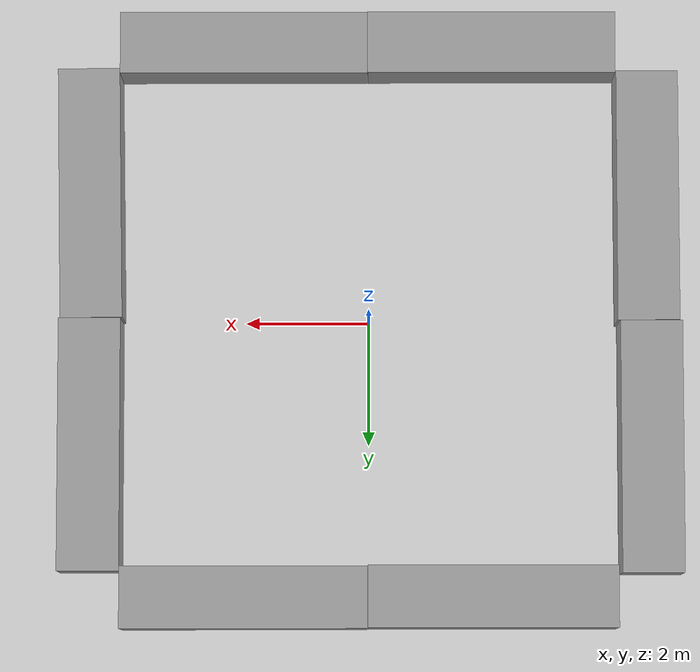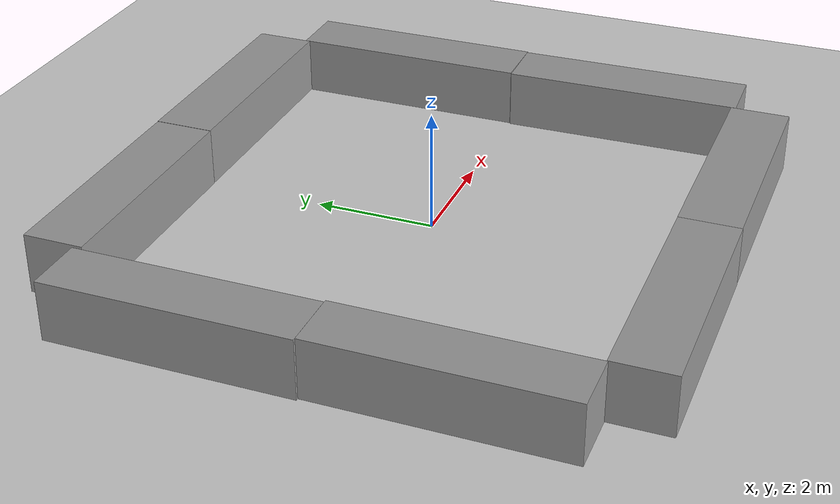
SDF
<sdf version="1.7">
 <world name="default">
  <light name="sun" type="directional">
   <cast_shadows>0</cast_shadows>
   <pose>0 0 10 0 -0 0</pose>
   <diffuse>0.8 0.8 0.8 1</diffuse>
   <specular>0.2 0.2 0.2 1</specular>
   <attenuation>
    <range>1000</range>
    <constant>0.9</constant>
    <linear>0.01</linear>
    <quadratic>0.001</quadratic>
   </attenuation>
   <direction>-0.5 0.1 -0.9</direction>
   <spot><inner_angle>0</inner_angle><outer_angle>0</outer_angle><falloff>0</falloff></spot>
  </light>
  <model name="ground_plane">
   <static>1</static>
   <link name="link">
    <collision name="collision">
     <geometry><plane><normal>0 0 1</normal><size>100 100</size></plane></geometry>
     <surface><friction><ode><mu>100</mu><mu2>50</mu2></ode></friction></surface>
    </collision>
    <visual name="visual">
     <cast_shadows>0</cast_shadows>
     <geometry><plane><normal>0 0 1</normal><size>100 100</size></plane></geometry>
     <material>
      <script><uri>file://media/materials/scripts/gazebo.material</uri><name>Gazebo/Grey</name></script>
     </material>
    </visual>
   </link>
  </model>
  <gravity>0 0 -9.8</gravity>
  <scene><ambient>0.4 0.4 0.4 1</ambient><background>0.7 0.7 0.7 1</background><shadows>1</shadows></scene>
  <magnetic_field>6e-06 2.3e-05 -4.2e-05</magnetic_field>
  <atmosphere type="adiabatic"/>
  <physics type="ode">
   <max_step_size>0.001</max_step_size>
   <real_time_factor>1</real_time_factor>
   <real_time_update_rate>1000</real_time_update_rate>
  </physics>
  <audio><device>default</device></audio>
  <spherical_coordinates>
   <surface_model>EARTH_WGS84</surface_model>
   <latitude_deg>0</latitude_deg>
   <longitude_deg>0</longitude_deg>
   <elevation>0</elevation>
   <heading_deg>0</heading_deg>
  </spherical_coordinates>
  <model name="unit_box">
   <pose>4.50419 -2.03086 0.5 0 -0 0.01501</pose>
   <link name="link">
    <inertial>
     <mass>1</mass>
     <inertia>
      <ixx>0.166667</ixx>
      <ixy>0</ixy>
      <ixz>0</ixz>
      <iyy>0.166667</iyy>
      <iyz>0</iyz>
      <izz>0.166667</izz>
     </inertia>
    </inertial>
    <collision name="collision"><geometry><box><size>1 4.0622 1</size></box></geometry></collision>
    <visual name="visual">
     <geometry><box><size>1 4.0622 1</size></box></geometry>
     <material>
      <script><name>Gazebo/Grey</name><uri>file://media/materials/scripts/gazebo.material</uri></script>
     </material>
    </visual>
   </link>
  </model>
  <model name="unit_box_clone">
   <pose>4.50016 2.0397 0.499994 -2e-06 -4e-06 2.1e-05</pose>
   <link name="link">
    <inertial>
     <mass>1</mass>
     <inertia>
      <ixx>0.166667</ixx>
      <ixy>0</ixy>
      <ixz>0</ixz>
      <iyy>0.166667</iyy>
      <iyz>0</iyz>
      <izz>0.166667</izz>
     </inertia>
    </inertial>
    <collision name="collision"><geometry><box><size>1 4.0622 1</size></box></geometry></collision>
    <visual name="visual">
     <geometry><box><size>1 4.0622 1</size></box></geometry>
     <material>
      <script><name>Gazebo/Grey</name><uri>file://media/materials/scripts/gazebo.material</uri></script>
     </material>
    </visual>
   </link>
  </model>
  <model name="unit_box_0">
   <pose>2.01469 4.49153 0.499283 -0 -0.000362 2e-06</pose>
   <link name="link">
    <inertial>
     <mass>1</mass>
     <inertia>
      <ixx>0.166667</ixx>
      <ixy>0</ixy>
      <ixz>0</ixz>
      <iyy>0.166667</iyy>
      <iyz>0</iyz>
      <izz>0.166667</izz>
     </inertia>
    </inertial>
    <collision name="collision"><geometry><box><size>3.96686 1 1</size></box></geometry></collision>
    <visual name="visual">
     <geometry><box><size>3.96686 1 1</size></box></geometry>
     <material>
      <script><name>Gazebo/Grey</name><uri>file://media/materials/scripts/gazebo.material</uri></script>
     </material>
    </visual>
   </link>
  </model>
  <model name="unit_box_0_clone">
   <pose>-1.98558 4.48227 0.499239 0 -0.000379 3e-06</pose>
   <link name="link">
    <inertial>
     <mass>1</mass>
     <inertia>
      <ixx>0.166667</ixx>
      <ixy>0</ixy>
      <ixz>0</ixz>
      <iyy>0.166667</iyy>
      <iyz>0</iyz>
      <izz>0.166667</izz>
     </inertia>
    </inertial>
    <collision name="collision"><geometry><box><size>4.01582 1 1</size></box></geometry></collision>
    <visual name="visual">
     <geometry><box><size>4.01582 1 1</size></box></geometry>
     <material>
      <script><name>Gazebo/Grey</name><uri>file://media/materials/scripts/gazebo.material</uri></script>
     </material>
    </visual>
   </link>
  </model>
  <model name="unit_box_0_clone_clone">
   <pose>2.02521 -4.48872 0.499239 0 -0.000379 -2.1e-05</pose>
   <link name="link">
    <inertial>
     <mass>1</mass>
     <inertia>
      <ixx>0.166667</ixx>
      <ixy>0</ixy>
      <ixz>0</ixz>
      <iyy>0.166667</iyy>
      <iyz>0</iyz>
      <izz>0.166667</izz>
     </inertia>
    </inertial>
    <collision name="collision"><geometry><box><size>4.01582 1 1</size></box></geometry></collision>
    <visual name="visual">
     <geometry><box><size>4.01582 1 1</size></box></geometry>
     <material>
      <script><name>Gazebo/Grey</name><uri>file://media/materials/scripts/gazebo.material</uri></script>
     </material>
    </visual>
   </link>
  </model>
  <model name="unit_box_clone_0">
   <pose>-4.50844 -1.985 0.499196 0.000396 -0 0.000124</pose>
   <link name="link">
    <inertial>
     <mass>1</mass>
     <inertia>
      <ixx>0.166667</ixx>
      <ixy>0</ixy>
      <ixz>0</ixz>
      <iyy>0.166667</iyy>
      <iyz>0</iyz>
      <izz>0.166667</izz>
     </inertia>
    </inertial>
    <collision name="collision"><geometry><box><size>1 4.0622 1</size></box></geometry></collision>
    <visual name="visual">
     <geometry><box><size>1 4.0622 1</size></box></geometry>
     <material>
      <script><name>Gazebo/Grey</name><uri>file://media/materials/scripts/gazebo.material</uri></script>
     </material>
    </visual>
   </link>
  </model>
  <model name="unit_box_clone_1">
   <pose>-4.54976 2.07778 0.499196 -0.000396 -0 2.3e-05</pose>
   <link name="link">
    <inertial>
     <mass>1</mass>
     <inertia>
      <ixx>0.166667</ixx>
      <ixy>0</ixy>
      <ixz>0</ixz>
      <iyy>0.166667</iyy>
      <iyz>0</iyz>
      <izz>0.166667</izz>
     </inertia>
    </inertial>
    <collision name="collision"><geometry><box><size>1 4.0622 1</size></box></geometry></collision>
    <visual name="visual">
     <geometry><box><size>1 4.0622 1</size></box></geometry>
     <material>
      <script><name>Gazebo/Grey</name><uri>file://media/materials/scripts/gazebo.material</uri></script>
     </material>
    </visual>
   </link>
  </model>
  <model name="unit_box_0_clone_clone_clone">
   <pose>-1.99155 -4.49441 0.499239 0 -0.000379 -1e-06</pose>
   <link name="link">
    <inertial>
     <mass>1</mass>
     <inertia>
      <ixx>0.166667</ixx>
      <ixy>0</ixy>
      <ixz>0</ixz>
      <iyy>0.166667</iyy>
      <iyz>0</iyz>
      <izz>0.166667</izz>
     </inertia>
    </inertial>
    <collision name="collision"><geometry><box><size>4.01582 1 1</size></box></geometry></collision>
    <visual name="visual">
     <geometry><box><size>4.01582 1 1</size></box></geometry>
     <material>
      <script><name>Gazebo/Grey</name><uri>file://media/materials/scripts/gazebo.material</uri></script>
     </material>
    </visual>
   </link>
  </model>
 </world>
</sdf>
